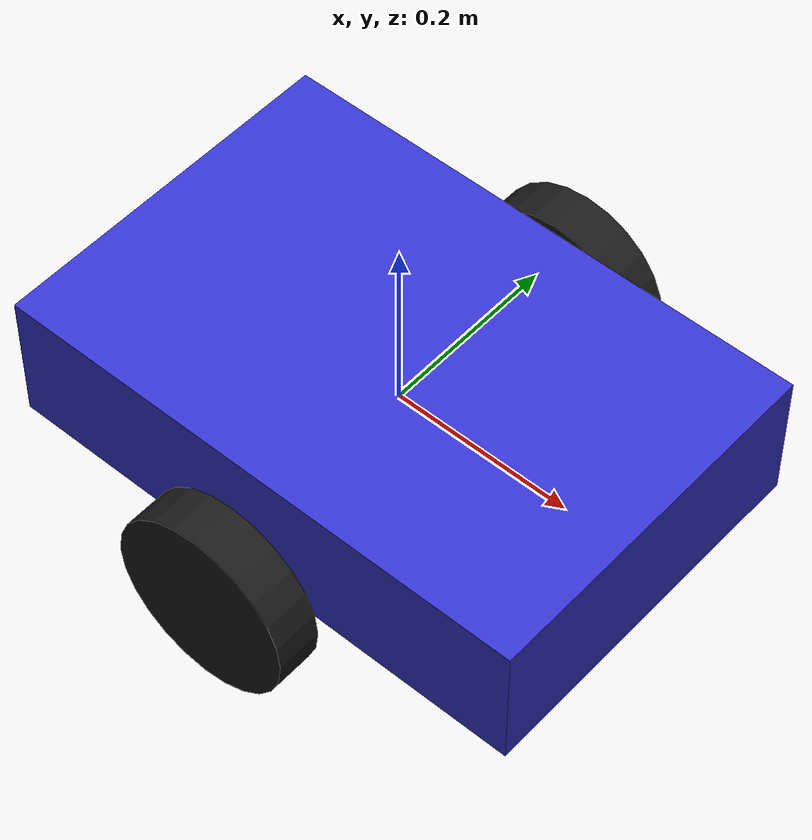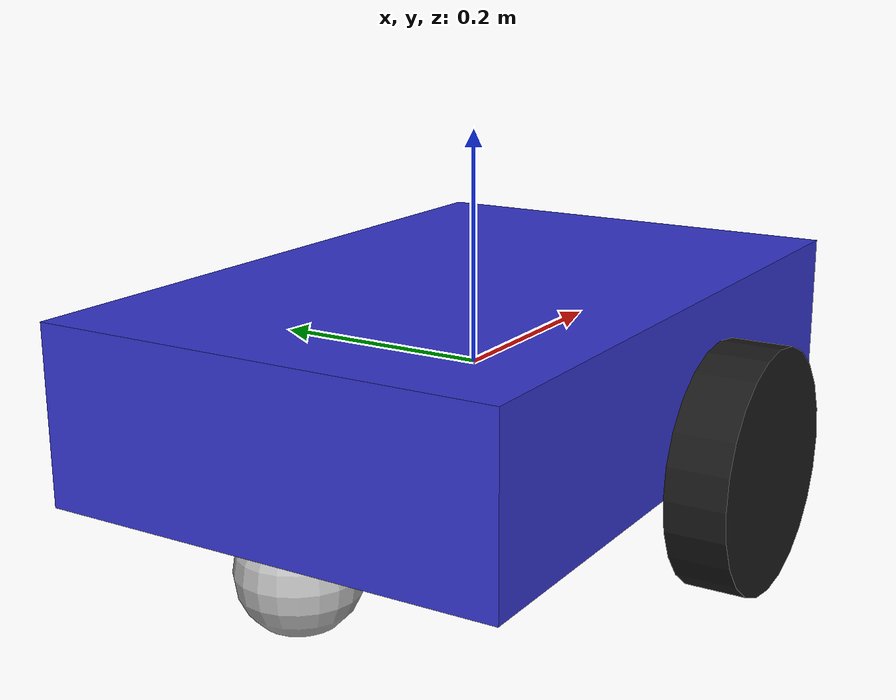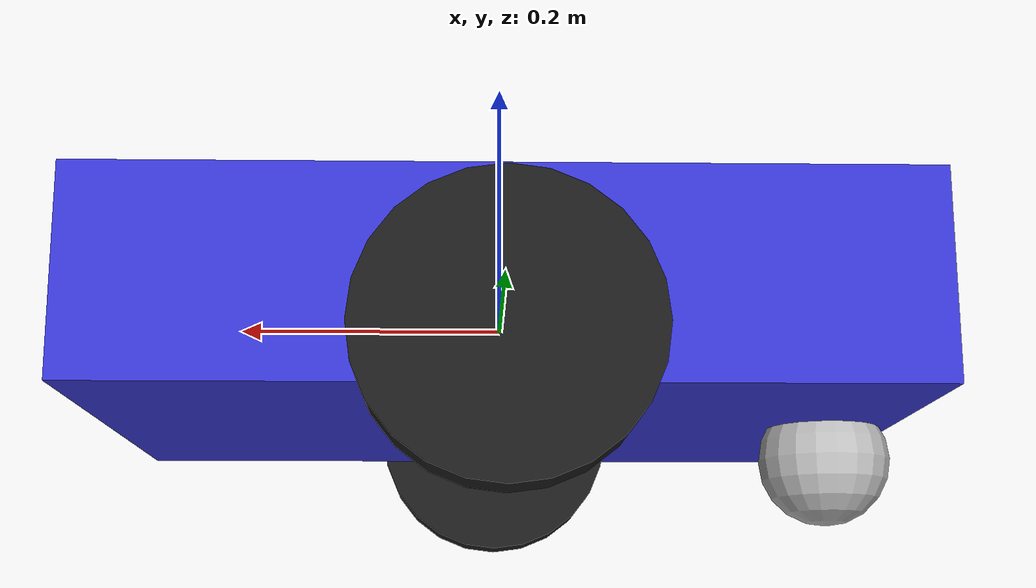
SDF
<?xml version="1.0" ?>
<sdf version="1.6">
  <model name="livo_rover">
    <link name="base_link">
      <inertial>
        <mass>10</mass>
        <inertia>
          <ixx>0.5</ixx><iyy>0.8</iyy><izz>0.5</izz>
          <ixy>0</ixy><ixz>0</ixz><iyz>0</iyz>
        </inertia>
      </inertial>
      <visual name="chassis_visual">
        <geometry><box><size>0.6 0.4 0.15</size></box></geometry>
        <material><ambient>0.2 0.2 0.8 1</ambient></material>
      </visual>
      <collision name="chassis_collision">
        <geometry><box><size>0.6 0.4 0.15</size></box></geometry>
      </collision>

      <sensor name="velodyne" type="ray">
        <pose>0 0 0.2 0 0 0</pose>
        <always_on>true</always_on>
        <update_rate>10</update_rate>
        <visualize>false</visualize>
        <ray>
          <scan>
            <horizontal>
              <samples>360</samples>
              <resolution>1</resolution>
              <min_angle>-3.14159</min_angle>
              <max_angle>3.14159</max_angle>
            </horizontal>
            <vertical>
              <samples>16</samples>
              <resolution>1</resolution>
              <min_angle>-0.2618</min_angle>
              <max_angle>0.2618</max_angle>
            </vertical>
          </scan>
          <range>
            <min>0.3</min>
            <max>50</max>
            <resolution>0.01</resolution>
          </range>
          <noise>
            <type>gaussian</type>
            <mean>0</mean>
            <stddev>0.005</stddev>
          </noise>
        </ray>
        <plugin name="gazebo_ros_velodyne" filename="libgazebo_ros_velodyne_laser.so">
          <topicName>/velodyne_points</topicName>
          <frameName>velodyne</frameName>
          <gaussianNoise>0.005</gaussianNoise>
        </plugin>
      </sensor>

      <sensor name="camera" type="camera">
        <pose>-0.3 0 0.1 0 0 3.14159</pose>
        <always_on>true</always_on>
        <update_rate>20</update_rate>
        <camera>
          <horizontal_fov>1.3962634</horizontal_fov>
          <image>
            <width>640</width>
            <height>480</height>
            <format>R8G8B8</format>
          </image>
          <clip><near>0.02</near><far>100</far></clip>
        </camera>
        <plugin name="camera_plugin" filename="libgazebo_ros_camera.so">
          <alwaysOn>true</alwaysOn>
          <updateRate>20</updateRate>
          <cameraName>camera</cameraName>
          <imageTopicName>image_raw</imageTopicName>
          <cameraInfoTopicName>camera_info</cameraInfoTopicName>
          <frameName>camera_link</frameName>
        </plugin>
      </sensor>

      <sensor name="imu_sensor" type="imu">
        <pose>0 0 0.05 0 0 0</pose>
        <always_on>true</always_on>
        <update_rate>200</update_rate>
        <plugin name="imu_plugin" filename="libgazebo_ros_imu_sensor.so">
          <topicName>/imu/data</topicName>
          <bodyName>base_link</bodyName>
          <updateRateHZ>200</updateRateHZ>
          <gaussianNoise>0.01</gaussianNoise>
          <xyzOffset>0 0 0</xyzOffset>
          <rpyOffset>0 0 0</rpyOffset>
          <frameName>imu_link</frameName>
        </plugin>
      </sensor>
    </link>

    <link name="left_wheel">
      <pose>0 0.25 -0.05 1.5708 0 0</pose>
      <inertial><mass>0.5</mass>
        <inertia><ixx>0.001</ixx><iyy>0.001</iyy><izz>0.001</izz><ixy>0</ixy><ixz>0</ixz><iyz>0</iyz></inertia>
      </inertial>
      <visual name="v"><geometry><cylinder><radius>0.1</radius><length>0.05</length></cylinder></geometry>
        <material><ambient>0.1 0.1 0.1 1</ambient></material></visual>
      <collision name="c"><geometry><cylinder><radius>0.1</radius><length>0.05</length></cylinder></geometry>
        <surface><friction><ode><mu>1.0</mu><mu2>1.0</mu2></ode></friction></surface></collision>
    </link>
    <joint name="left_wheel_joint" type="revolute">
      <parent>base_link</parent><child>left_wheel</child>
      <axis><xyz>0 0 1</xyz></axis>
    </joint>

    <link name="right_wheel">
      <pose>0 -0.25 -0.05 1.5708 0 0</pose>
      <inertial><mass>0.5</mass>
        <inertia><ixx>0.001</ixx><iyy>0.001</iyy><izz>0.001</izz><ixy>0</ixy><ixz>0</ixz><iyz>0</iyz></inertia>
      </inertial>
      <visual name="v"><geometry><cylinder><radius>0.1</radius><length>0.05</length></cylinder></geometry>
        <material><ambient>0.1 0.1 0.1 1</ambient></material></visual>
      <collision name="c"><geometry><cylinder><radius>0.1</radius><length>0.05</length></cylinder></geometry>
        <surface><friction><ode><mu>1.0</mu><mu2>1.0</mu2></ode></friction></surface></collision>
    </link>
    <joint name="right_wheel_joint" type="revolute">
      <parent>base_link</parent><child>right_wheel</child>
      <axis><xyz>0 0 1</xyz></axis>
    </joint>

    <link name="caster">
      <pose>-0.25 0 -0.1 0 0 0</pose>
      <inertial><mass>0.1</mass>
        <inertia><ixx>0.0001</ixx><iyy>0.0001</iyy><izz>0.0001</izz><ixy>0</ixy><ixz>0</ixz><iyz>0</iyz></inertia>
      </inertial>
      <visual name="v"><geometry><sphere><radius>0.05</radius></sphere></geometry></visual>
      <collision name="c"><geometry><sphere><radius>0.05</radius></sphere></geometry>
        <surface><friction><ode><mu>0.0</mu><mu2>0.0</mu2></ode></friction></surface></collision>
    </link>
    <joint name="caster_joint" type="ball">
      <parent>base_link</parent><child>caster</child>
    </joint>

    <plugin name="diff_drive" filename="libgazebo_ros_diff_drive.so">
      <leftJoint>left_wheel_joint</leftJoint>
      <rightJoint>right_wheel_joint</rightJoint>
      <wheelSeparation>0.5</wheelSeparation>
      <wheelDiameter>0.2</wheelDiameter>
      <torque>5</torque>
      <commandTopic>cmd_vel</commandTopic>
      <odometryTopic>odom</odometryTopic>
      <odometryFrame>odom</odometryFrame>
      <robotBaseFrame>base_link</robotBaseFrame>
      <updateRate>30</updateRate>
      <publishWheelTF>true</publishWheelTF>
      <publishOdom>true</publishOdom>
      <publishWheelJointState>true</publishWheelJointState>
    </plugin>
  </model>
</sdf>
